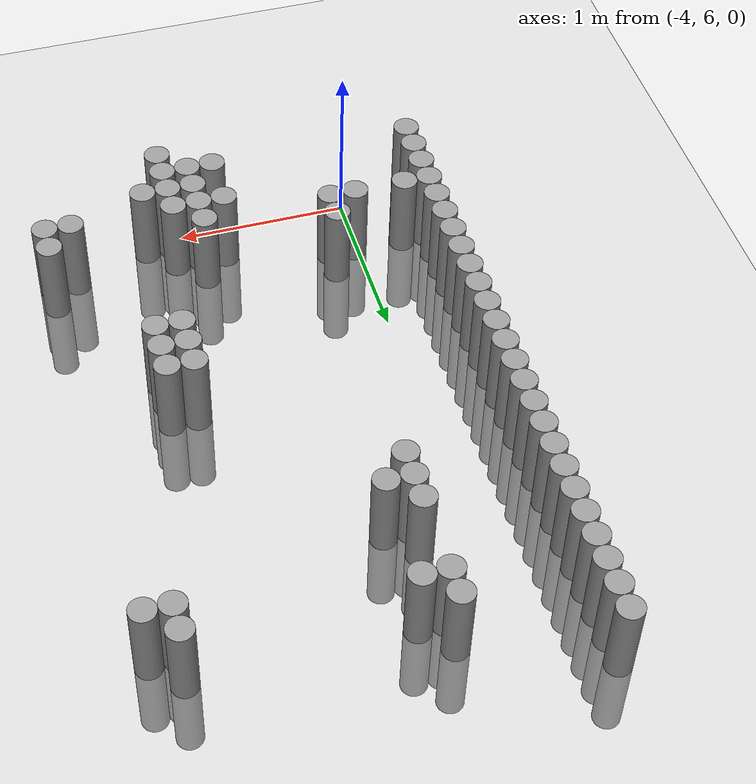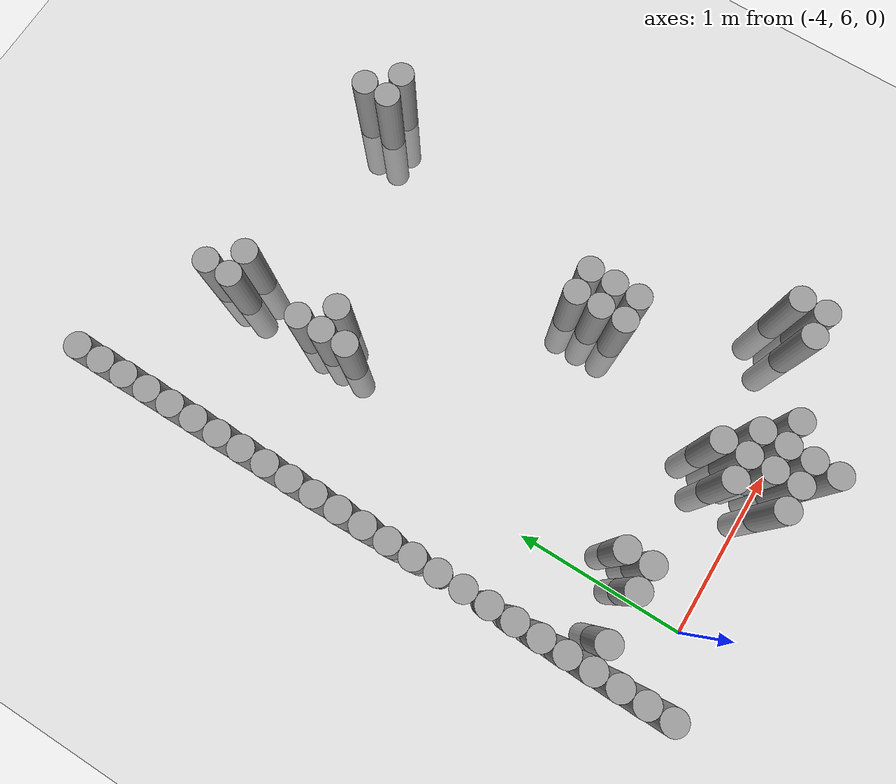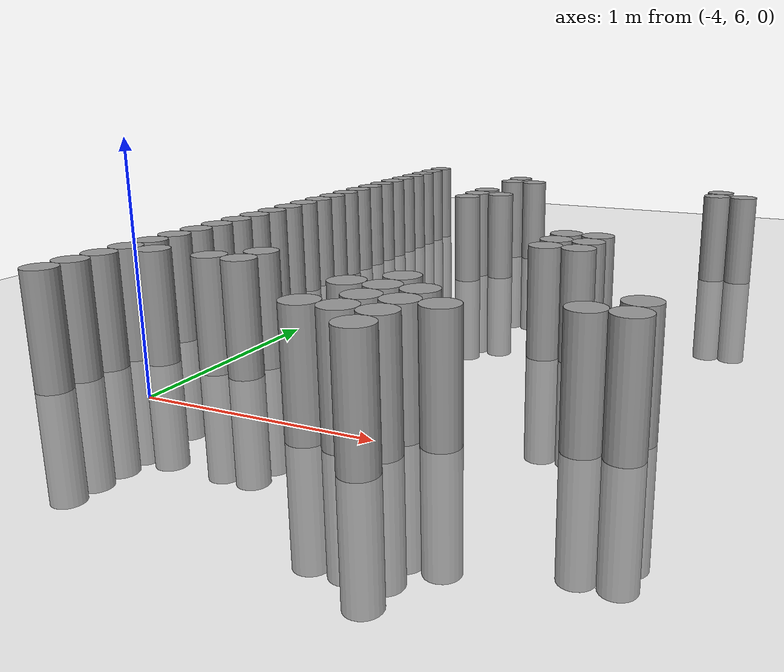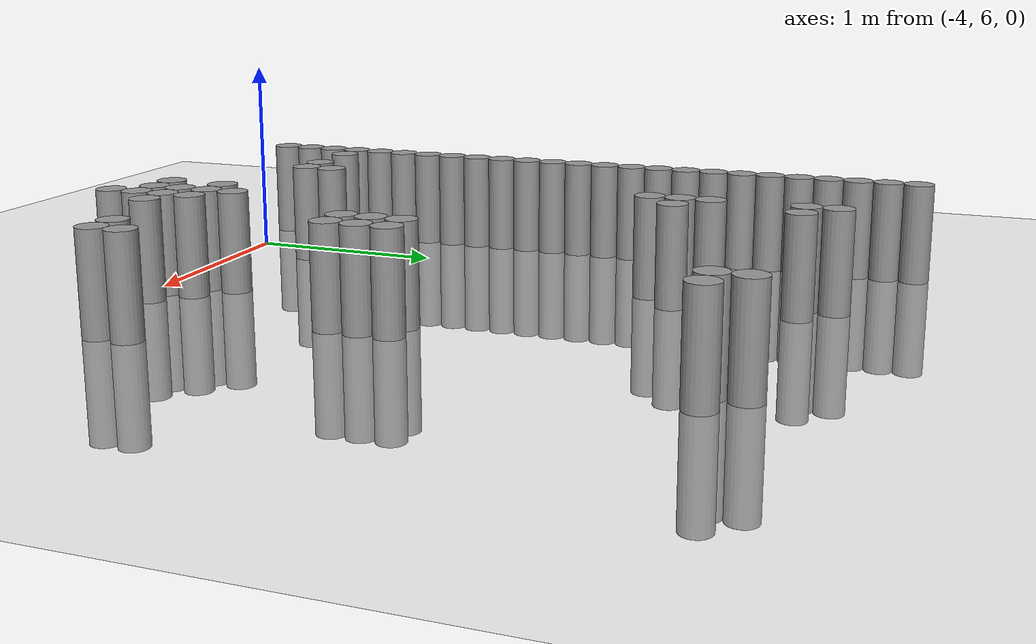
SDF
<sdf version="1.6">
 <world name="default">
  <model name="ground_plane">
   <static>1</static>
   <link name="link">
    <collision name="collision">
     <geometry><plane><normal>0 0 1</normal><size>100 100</size></plane></geometry>
     <surface><friction><ode><mu>1000</mu><mu2>500</mu2></ode></friction></surface>
    </collision>
    <visual name="visual">
     <cast_shadows>0</cast_shadows>
     <geometry><plane><normal>0 0 1</normal><size>100 100</size></plane></geometry>
     <material>
      <script><uri>file://media/materials/scripts/gazebo.material</uri><name>Gazebo/Grey</name></script>
     </material>
    </visual>
   </link>
  </model>
  <model name="unit_cylinder_101">
   <pose>-4.425000 5.925000 0.000000 0.000000 0.000000 0.000000</pose>
   <link name="link">
    <inertial>
     <mass>1</mass>
     <inertia><ixx>0.145833</ixx><ixy>0</ixy><ixz>0</ixz><iyy>0.145833</iyy><iyz>0</iyz><izz>0.125</izz></inertia>
    </inertial>
    <collision name="collision">
     <geometry><cylinder><radius>0.075000</radius><length>1</length></cylinder></geometry>
    </collision>
    <visual name="visual">
     <geometry><cylinder><radius>0.075000</radius><length>1</length></cylinder></geometry>
     <material>
      <script><name>Gazebo/Grey</name><uri>file://media/materials/scripts/gazebo.material</uri></script>
     </material>
    </visual>
   </link>
  </model>
  <model name="unit_cylinder_102">
   <pose>-4.425000 6.075000 0.000000 0.000000 0.000000 0.000000</pose>
   <link name="link">
    <inertial>
     <mass>1</mass>
     <inertia><ixx>0.145833</ixx><ixy>0</ixy><ixz>0</ixz><iyy>0.145833</iyy><iyz>0</iyz><izz>0.125</izz></inertia>
    </inertial>
    <collision name="collision">
     <geometry><cylinder><radius>0.075000</radius><length>1</length></cylinder></geometry>
    </collision>
    <visual name="visual">
     <geometry><cylinder><radius>0.075000</radius><length>1</length></cylinder></geometry>
     <material>
      <script><name>Gazebo/Grey</name><uri>file://media/materials/scripts/gazebo.material</uri></script>
     </material>
    </visual>
   </link>
  </model>
  <model name="unit_cylinder_103">
   <pose>-4.425000 6.225000 0.000000 0.000000 0.000000 0.000000</pose>
   <link name="link">
    <inertial>
     <mass>1</mass>
     <inertia><ixx>0.145833</ixx><ixy>0</ixy><ixz>0</ixz><iyy>0.145833</iyy><iyz>0</iyz><izz>0.125</izz></inertia>
    </inertial>
    <collision name="collision">
     <geometry><cylinder><radius>0.075000</radius><length>1</length></cylinder></geometry>
    </collision>
    <visual name="visual">
     <geometry><cylinder><radius>0.075000</radius><length>1</length></cylinder></geometry>
     <material>
      <script><name>Gazebo/Grey</name><uri>file://media/materials/scripts/gazebo.material</uri></script>
     </material>
    </visual>
   </link>
  </model>
  <model name="unit_cylinder_104">
   <pose>-4.425000 6.375000 0.000000 0.000000 0.000000 0.000000</pose>
   <link name="link">
    <inertial>
     <mass>1</mass>
     <inertia><ixx>0.145833</ixx><ixy>0</ixy><ixz>0</ixz><iyy>0.145833</iyy><iyz>0</iyz><izz>0.125</izz></inertia>
    </inertial>
    <collision name="collision">
     <geometry><cylinder><radius>0.075000</radius><length>1</length></cylinder></geometry>
    </collision>
    <visual name="visual">
     <geometry><cylinder><radius>0.075000</radius><length>1</length></cylinder></geometry>
     <material>
      <script><name>Gazebo/Grey</name><uri>file://media/materials/scripts/gazebo.material</uri></script>
     </material>
    </visual>
   </link>
  </model>
  <model name="unit_cylinder_105">
   <pose>-4.425000 6.525000 0.000000 0.000000 0.000000 0.000000</pose>
   <link name="link">
    <inertial>
     <mass>1</mass>
     <inertia><ixx>0.145833</ixx><ixy>0</ixy><ixz>0</ixz><iyy>0.145833</iyy><iyz>0</iyz><izz>0.125</izz></inertia>
    </inertial>
    <collision name="collision">
     <geometry><cylinder><radius>0.075000</radius><length>1</length></cylinder></geometry>
    </collision>
    <visual name="visual">
     <geometry><cylinder><radius>0.075000</radius><length>1</length></cylinder></geometry>
     <material>
      <script><name>Gazebo/Grey</name><uri>file://media/materials/scripts/gazebo.material</uri></script>
     </material>
    </visual>
   </link>
  </model>
  <model name="unit_cylinder_106">
   <pose>-4.425000 6.675000 0.000000 0.000000 0.000000 0.000000</pose>
   <link name="link">
    <inertial>
     <mass>1</mass>
     <inertia><ixx>0.145833</ixx><ixy>0</ixy><ixz>0</ixz><iyy>0.145833</iyy><iyz>0</iyz><izz>0.125</izz></inertia>
    </inertial>
    <collision name="collision">
     <geometry><cylinder><radius>0.075000</radius><length>1</length></cylinder></geometry>
    </collision>
    <visual name="visual">
     <geometry><cylinder><radius>0.075000</radius><length>1</length></cylinder></geometry>
     <material>
      <script><name>Gazebo/Grey</name><uri>file://media/materials/scripts/gazebo.material</uri></script>
     </material>
    </visual>
   </link>
  </model>
  <model name="unit_cylinder_107">
   <pose>-4.425000 6.825000 0.000000 0.000000 0.000000 0.000000</pose>
   <link name="link">
    <inertial>
     <mass>1</mass>
     <inertia><ixx>0.145833</ixx><ixy>0</ixy><ixz>0</ixz><iyy>0.145833</iyy><iyz>0</iyz><izz>0.125</izz></inertia>
    </inertial>
    <collision name="collision">
     <geometry><cylinder><radius>0.075000</radius><length>1</length></cylinder></geometry>
    </collision>
    <visual name="visual">
     <geometry><cylinder><radius>0.075000</radius><length>1</length></cylinder></geometry>
     <material>
      <script><name>Gazebo/Grey</name><uri>file://media/materials/scripts/gazebo.material</uri></script>
     </material>
    </visual>
   </link>
  </model>
  <model name="unit_cylinder_108">
   <pose>-4.425000 6.975000 0.000000 0.000000 0.000000 0.000000</pose>
   <link name="link">
    <inertial>
     <mass>1</mass>
     <inertia><ixx>0.145833</ixx><ixy>0</ixy><ixz>0</ixz><iyy>0.145833</iyy><iyz>0</iyz><izz>0.125</izz></inertia>
    </inertial>
    <collision name="collision">
     <geometry><cylinder><radius>0.075000</radius><length>1</length></cylinder></geometry>
    </collision>
    <visual name="visual">
     <geometry><cylinder><radius>0.075000</radius><length>1</length></cylinder></geometry>
     <material>
      <script><name>Gazebo/Grey</name><uri>file://media/materials/scripts/gazebo.material</uri></script>
     </material>
    </visual>
   </link>
  </model>
  <model name="unit_cylinder_109">
   <pose>-4.425000 7.125000 0.000000 0.000000 0.000000 0.000000</pose>
   <link name="link">
    <inertial>
     <mass>1</mass>
     <inertia><ixx>0.145833</ixx><ixy>0</ixy><ixz>0</ixz><iyy>0.145833</iyy><iyz>0</iyz><izz>0.125</izz></inertia>
    </inertial>
    <collision name="collision">
     <geometry><cylinder><radius>0.075000</radius><length>1</length></cylinder></geometry>
    </collision>
    <visual name="visual">
     <geometry><cylinder><radius>0.075000</radius><length>1</length></cylinder></geometry>
     <material>
      <script><name>Gazebo/Grey</name><uri>file://media/materials/scripts/gazebo.material</uri></script>
     </material>
    </visual>
   </link>
  </model>
  <model name="unit_cylinder_110">
   <pose>-4.425000 7.275000 0.000000 0.000000 0.000000 0.000000</pose>
   <link name="link">
    <inertial>
     <mass>1</mass>
     <inertia><ixx>0.145833</ixx><ixy>0</ixy><ixz>0</ixz><iyy>0.145833</iyy><iyz>0</iyz><izz>0.125</izz></inertia>
    </inertial>
    <collision name="collision">
     <geometry><cylinder><radius>0.075000</radius><length>1</length></cylinder></geometry>
    </collision>
    <visual name="visual">
     <geometry><cylinder><radius>0.075000</radius><length>1</length></cylinder></geometry>
     <material>
      <script><name>Gazebo/Grey</name><uri>file://media/materials/scripts/gazebo.material</uri></script>
     </material>
    </visual>
   </link>
  </model>
  <model name="unit_cylinder_111">
   <pose>-4.425000 7.425000 0.000000 0.000000 0.000000 0.000000</pose>
   <link name="link">
    <inertial>
     <mass>1</mass>
     <inertia><ixx>0.145833</ixx><ixy>0</ixy><ixz>0</ixz><iyy>0.145833</iyy><iyz>0</iyz><izz>0.125</izz></inertia>
    </inertial>
    <collision name="collision">
     <geometry><cylinder><radius>0.075000</radius><length>1</length></cylinder></geometry>
    </collision>
    <visual name="visual">
     <geometry><cylinder><radius>0.075000</radius><length>1</length></cylinder></geometry>
     <material>
      <script><name>Gazebo/Grey</name><uri>file://media/materials/scripts/gazebo.material</uri></script>
     </material>
    </visual>
   </link>
  </model>
  <model name="unit_cylinder_112">
   <pose>-4.425000 7.575000 0.000000 0.000000 0.000000 0.000000</pose>
   <link name="link">
    <inertial>
     <mass>1</mass>
     <inertia><ixx>0.145833</ixx><ixy>0</ixy><ixz>0</ixz><iyy>0.145833</iyy><iyz>0</iyz><izz>0.125</izz></inertia>
    </inertial>
    <collision name="collision">
     <geometry><cylinder><radius>0.075000</radius><length>1</length></cylinder></geometry>
    </collision>
    <visual name="visual">
     <geometry><cylinder><radius>0.075000</radius><length>1</length></cylinder></geometry>
     <material>
      <script><name>Gazebo/Grey</name><uri>file://media/materials/scripts/gazebo.material</uri></script>
     </material>
    </visual>
   </link>
  </model>
  <model name="unit_cylinder_113">
   <pose>-4.425000 7.725000 0.000000 0.000000 0.000000 0.000000</pose>
   <link name="link">
    <inertial>
     <mass>1</mass>
     <inertia><ixx>0.145833</ixx><ixy>0</ixy><ixz>0</ixz><iyy>0.145833</iyy><iyz>0</iyz><izz>0.125</izz></inertia>
    </inertial>
    <collision name="collision">
     <geometry><cylinder><radius>0.075000</radius><length>1</length></cylinder></geometry>
    </collision>
    <visual name="visual">
     <geometry><cylinder><radius>0.075000</radius><length>1</length></cylinder></geometry>
     <material>
      <script><name>Gazebo/Grey</name><uri>file://media/materials/scripts/gazebo.material</uri></script>
     </material>
    </visual>
   </link>
  </model>
  <model name="unit_cylinder_114">
   <pose>-4.425000 7.875000 0.000000 0.000000 0.000000 0.000000</pose>
   <link name="link">
    <inertial>
     <mass>1</mass>
     <inertia><ixx>0.145833</ixx><ixy>0</ixy><ixz>0</ixz><iyy>0.145833</iyy><iyz>0</iyz><izz>0.125</izz></inertia>
    </inertial>
    <collision name="collision">
     <geometry><cylinder><radius>0.075000</radius><length>1</length></cylinder></geometry>
    </collision>
    <visual name="visual">
     <geometry><cylinder><radius>0.075000</radius><length>1</length></cylinder></geometry>
     <material>
      <script><name>Gazebo/Grey</name><uri>file://media/materials/scripts/gazebo.material</uri></script>
     </material>
    </visual>
   </link>
  </model>
  <model name="unit_cylinder_115">
   <pose>-4.425000 8.025000 0.000000 0.000000 0.000000 0.000000</pose>
   <link name="link">
    <inertial>
     <mass>1</mass>
     <inertia><ixx>0.145833</ixx><ixy>0</ixy><ixz>0</ixz><iyy>0.145833</iyy><iyz>0</iyz><izz>0.125</izz></inertia>
    </inertial>
    <collision name="collision">
     <geometry><cylinder><radius>0.075000</radius><length>1</length></cylinder></geometry>
    </collision>
    <visual name="visual">
     <geometry><cylinder><radius>0.075000</radius><length>1</length></cylinder></geometry>
     <material>
      <script><name>Gazebo/Grey</name><uri>file://media/materials/scripts/gazebo.material</uri></script>
     </material>
    </visual>
   </link>
  </model>
  <model name="unit_cylinder_116">
   <pose>-4.425000 8.175000 0.000000 0.000000 0.000000 0.000000</pose>
   <link name="link">
    <inertial>
     <mass>1</mass>
     <inertia><ixx>0.145833</ixx><ixy>0</ixy><ixz>0</ixz><iyy>0.145833</iyy><iyz>0</iyz><izz>0.125</izz></inertia>
    </inertial>
    <collision name="collision">
     <geometry><cylinder><radius>0.075000</radius><length>1</length></cylinder></geometry>
    </collision>
    <visual name="visual">
     <geometry><cylinder><radius>0.075000</radius><length>1</length></cylinder></geometry>
     <material>
      <script><name>Gazebo/Grey</name><uri>file://media/materials/scripts/gazebo.material</uri></script>
     </material>
    </visual>
   </link>
  </model>
  <model name="unit_cylinder_117">
   <pose>-4.425000 8.325000 0.000000 0.000000 0.000000 0.000000</pose>
   <link name="link">
    <inertial>
     <mass>1</mass>
     <inertia><ixx>0.145833</ixx><ixy>0</ixy><ixz>0</ixz><iyy>0.145833</iyy><iyz>0</iyz><izz>0.125</izz></inertia>
    </inertial>
    <collision name="collision">
     <geometry><cylinder><radius>0.075000</radius><length>1</length></cylinder></geometry>
    </collision>
    <visual name="visual">
     <geometry><cylinder><radius>0.075000</radius><length>1</length></cylinder></geometry>
     <material>
      <script><name>Gazebo/Grey</name><uri>file://media/materials/scripts/gazebo.material</uri></script>
     </material>
    </visual>
   </link>
  </model>
  <model name="unit_cylinder_118">
   <pose>-4.425000 8.475000 0.000000 0.000000 0.000000 0.000000</pose>
   <link name="link">
    <inertial>
     <mass>1</mass>
     <inertia><ixx>0.145833</ixx><ixy>0</ixy><ixz>0</ixz><iyy>0.145833</iyy><iyz>0</iyz><izz>0.125</izz></inertia>
    </inertial>
    <collision name="collision">
     <geometry><cylinder><radius>0.075000</radius><length>1</length></cylinder></geometry>
    </collision>
    <visual name="visual">
     <geometry><cylinder><radius>0.075000</radius><length>1</length></cylinder></geometry>
     <material>
      <script><name>Gazebo/Grey</name><uri>file://media/materials/scripts/gazebo.material</uri></script>
     </material>
    </visual>
   </link>
  </model>
  <model name="unit_cylinder_119">
   <pose>-4.425000 8.625000 0.000000 0.000000 0.000000 0.000000</pose>
   <link name="link">
    <inertial>
     <mass>1</mass>
     <inertia><ixx>0.145833</ixx><ixy>0</ixy><ixz>0</ixz><iyy>0.145833</iyy><iyz>0</iyz><izz>0.125</izz></inertia>
    </inertial>
    <collision name="collision">
     <geometry><cylinder><radius>0.075000</radius><length>1</length></cylinder></geometry>
    </collision>
    <visual name="visual">
     <geometry><cylinder><radius>0.075000</radius><length>1</length></cylinder></geometry>
     <material>
      <script><name>Gazebo/Grey</name><uri>file://media/materials/scripts/gazebo.material</uri></script>
     </material>
    </visual>
   </link>
  </model>
  <model name="unit_cylinder_120">
   <pose>-4.425000 8.775000 0.000000 0.000000 0.000000 0.000000</pose>
   <link name="link">
    <inertial>
     <mass>1</mass>
     <inertia><ixx>0.145833</ixx><ixy>0</ixy><ixz>0</ixz><iyy>0.145833</iyy><iyz>0</iyz><izz>0.125</izz></inertia>
    </inertial>
    <collision name="collision">
     <geometry><cylinder><radius>0.075000</radius><length>1</length></cylinder></geometry>
    </collision>
    <visual name="visual">
     <geometry><cylinder><radius>0.075000</radius><length>1</length></cylinder></geometry>
     <material>
      <script><name>Gazebo/Grey</name><uri>file://media/materials/scripts/gazebo.material</uri></script>
     </material>
    </visual>
   </link>
  </model>
  <model name="unit_cylinder_121">
   <pose>-4.425000 8.925000 0.000000 0.000000 0.000000 0.000000</pose>
   <link name="link">
    <inertial>
     <mass>1</mass>
     <inertia><ixx>0.145833</ixx><ixy>0</ixy><ixz>0</ixz><iyy>0.145833</iyy><iyz>0</iyz><izz>0.125</izz></inertia>
    </inertial>
    <collision name="collision">
     <geometry><cylinder><radius>0.075000</radius><length>1</length></cylinder></geometry>
    </collision>
    <visual name="visual">
     <geometry><cylinder><radius>0.075000</radius><length>1</length></cylinder></geometry>
     <material>
      <script><name>Gazebo/Grey</name><uri>file://media/materials/scripts/gazebo.material</uri></script>
     </material>
    </visual>
   </link>
  </model>
  <model name="unit_cylinder_122">
   <pose>-4.425000 9.075000 0.000000 0.000000 0.000000 0.000000</pose>
   <link name="link">
    <inertial>
     <mass>1</mass>
     <inertia><ixx>0.145833</ixx><ixy>0</ixy><ixz>0</ixz><iyy>0.145833</iyy><iyz>0</iyz><izz>0.125</izz></inertia>
    </inertial>
    <collision name="collision">
     <geometry><cylinder><radius>0.075000</radius><length>1</length></cylinder></geometry>
    </collision>
    <visual name="visual">
     <geometry><cylinder><radius>0.075000</radius><length>1</length></cylinder></geometry>
     <material>
      <script><name>Gazebo/Grey</name><uri>file://media/materials/scripts/gazebo.material</uri></script>
     </material>
    </visual>
   </link>
  </model>
  <model name="unit_cylinder_123">
   <pose>-4.425000 9.225000 0.000000 0.000000 0.000000 0.000000</pose>
   <link name="link">
    <inertial>
     <mass>1</mass>
     <inertia><ixx>0.145833</ixx><ixy>0</ixy><ixz>0</ixz><iyy>0.145833</iyy><iyz>0</iyz><izz>0.125</izz></inertia>
    </inertial>
    <collision name="collision">
     <geometry><cylinder><radius>0.075000</radius><length>1</length></cylinder></geometry>
    </collision>
    <visual name="visual">
     <geometry><cylinder><radius>0.075000</radius><length>1</length></cylinder></geometry>
     <material>
      <script><name>Gazebo/Grey</name><uri>file://media/materials/scripts/gazebo.material</uri></script>
     </material>
    </visual>
   </link>
  </model>
  <model name="unit_cylinder_124">
   <pose>-4.425000 9.375000 0.000000 0.000000 0.000000 0.000000</pose>
   <link name="link">
    <inertial>
     <mass>1</mass>
     <inertia><ixx>0.145833</ixx><ixy>0</ixy><ixz>0</ixz><iyy>0.145833</iyy><iyz>0</iyz><izz>0.125</izz></inertia>
    </inertial>
    <collision name="collision">
     <geometry><cylinder><radius>0.075000</radius><length>1</length></cylinder></geometry>
    </collision>
    <visual name="visual">
     <geometry><cylinder><radius>0.075000</radius><length>1</length></cylinder></geometry>
     <material>
      <script><name>Gazebo/Grey</name><uri>file://media/materials/scripts/gazebo.material</uri></script>
     </material>
    </visual>
   </link>
  </model>
  <model name="unit_cylinder_125">
   <pose>-4.425000 9.525000 0.000000 0.000000 0.000000 0.000000</pose>
   <link name="link">
    <inertial>
     <mass>1</mass>
     <inertia><ixx>0.145833</ixx><ixy>0</ixy><ixz>0</ixz><iyy>0.145833</iyy><iyz>0</iyz><izz>0.125</izz></inertia>
    </inertial>
    <collision name="collision">
     <geometry><cylinder><radius>0.075000</radius><length>1</length></cylinder></geometry>
    </collision>
    <visual name="visual">
     <geometry><cylinder><radius>0.075000</radius><length>1</length></cylinder></geometry>
     <material>
      <script><name>Gazebo/Grey</name><uri>file://media/materials/scripts/gazebo.material</uri></script>
     </material>
    </visual>
   </link>
  </model>
  <model name="unit_cylinder_129">
   <pose>-4.275000 6.375000 0.000000 0.000000 0.000000 0.000000</pose>
   <link name="link">
    <inertial>
     <mass>1</mass>
     <inertia><ixx>0.145833</ixx><ixy>0</ixy><ixz>0</ixz><iyy>0.145833</iyy><iyz>0</iyz><izz>0.125</izz></inertia>
    </inertial>
    <collision name="collision">
     <geometry><cylinder><radius>0.075000</radius><length>1</length></cylinder></geometry>
    </collision>
    <visual name="visual">
     <geometry><cylinder><radius>0.075000</radius><length>1</length></cylinder></geometry>
     <material>
      <script><name>Gazebo/Grey</name><uri>file://media/materials/scripts/gazebo.material</uri></script>
     </material>
    </visual>
   </link>
  </model>
  <model name="unit_cylinder_131">
   <pose>-3.975000 6.375000 0.000000 0.000000 0.000000 0.000000</pose>
   <link name="link">
    <inertial>
     <mass>1</mass>
     <inertia><ixx>0.145833</ixx><ixy>0</ixy><ixz>0</ixz><iyy>0.145833</iyy><iyz>0</iyz><izz>0.125</izz></inertia>
    </inertial>
    <collision name="collision">
     <geometry><cylinder><radius>0.075000</radius><length>1</length></cylinder></geometry>
    </collision>
    <visual name="visual">
     <geometry><cylinder><radius>0.075000</radius><length>1</length></cylinder></geometry>
     <material>
      <script><name>Gazebo/Grey</name><uri>file://media/materials/scripts/gazebo.material</uri></script>
     </material>
    </visual>
   </link>
  </model>
  <model name="unit_cylinder_132">
   <pose>-3.825000 6.375000 0.000000 0.000000 0.000000 0.000000</pose>
   <link name="link">
    <inertial>
     <mass>1</mass>
     <inertia><ixx>0.145833</ixx><ixy>0</ixy><ixz>0</ixz><iyy>0.145833</iyy><iyz>0</iyz><izz>0.125</izz></inertia>
    </inertial>
    <collision name="collision">
     <geometry><cylinder><radius>0.075000</radius><length>1</length></cylinder></geometry>
    </collision>
    <visual name="visual">
     <geometry><cylinder><radius>0.075000</radius><length>1</length></cylinder></geometry>
     <material>
      <script><name>Gazebo/Grey</name><uri>file://media/materials/scripts/gazebo.material</uri></script>
     </material>
    </visual>
   </link>
  </model>
  <model name="unit_cylinder_133">
   <pose>-3.825000 6.525000 0.000000 0.000000 0.000000 0.000000</pose>
   <link name="link">
    <inertial>
     <mass>1</mass>
     <inertia><ixx>0.145833</ixx><ixy>0</ixy><ixz>0</ixz><iyy>0.145833</iyy><iyz>0</iyz><izz>0.125</izz></inertia>
    </inertial>
    <collision name="collision">
     <geometry><cylinder><radius>0.075000</radius><length>1</length></cylinder></geometry>
    </collision>
    <visual name="visual">
     <geometry><cylinder><radius>0.075000</radius><length>1</length></cylinder></geometry>
     <material>
      <script><name>Gazebo/Grey</name><uri>file://media/materials/scripts/gazebo.material</uri></script>
     </material>
    </visual>
   </link>
  </model>
  <model name="unit_cylinder_134">
   <pose>-3.675000 8.325000 0.000000 0.000000 0.000000 0.000000</pose>
   <link name="link">
    <inertial>
     <mass>1</mass>
     <inertia><ixx>0.145833</ixx><ixy>0</ixy><ixz>0</ixz><iyy>0.145833</iyy><iyz>0</iyz><izz>0.125</izz></inertia>
    </inertial>
    <collision name="collision">
     <geometry><cylinder><radius>0.075000</radius><length>1</length></cylinder></geometry>
    </collision>
    <visual name="visual">
     <geometry><cylinder><radius>0.075000</radius><length>1</length></cylinder></geometry>
     <material>
      <script><name>Gazebo/Grey</name><uri>file://media/materials/scripts/gazebo.material</uri></script>
     </material>
    </visual>
   </link>
  </model>
  <model name="unit_cylinder_135">
   <pose>-3.675000 8.475000 0.000000 0.000000 0.000000 0.000000</pose>
   <link name="link">
    <inertial>
     <mass>1</mass>
     <inertia><ixx>0.145833</ixx><ixy>0</ixy><ixz>0</ixz><iyy>0.145833</iyy><iyz>0</iyz><izz>0.125</izz></inertia>
    </inertial>
    <collision name="collision">
     <geometry><cylinder><radius>0.075000</radius><length>1</length></cylinder></geometry>
    </collision>
    <visual name="visual">
     <geometry><cylinder><radius>0.075000</radius><length>1</length></cylinder></geometry>
     <material>
      <script><name>Gazebo/Grey</name><uri>file://media/materials/scripts/gazebo.material</uri></script>
     </material>
    </visual>
   </link>
  </model>
  <model name="unit_cylinder_136">
   <pose>-3.675000 8.625000 0.000000 0.000000 0.000000 0.000000</pose>
   <link name="link">
    <inertial>
     <mass>1</mass>
     <inertia><ixx>0.145833</ixx><ixy>0</ixy><ixz>0</ixz><iyy>0.145833</iyy><iyz>0</iyz><izz>0.125</izz></inertia>
    </inertial>
    <collision name="collision">
     <geometry><cylinder><radius>0.075000</radius><length>1</length></cylinder></geometry>
    </collision>
    <visual name="visual">
     <geometry><cylinder><radius>0.075000</radius><length>1</length></cylinder></geometry>
     <material>
      <script><name>Gazebo/Grey</name><uri>file://media/materials/scripts/gazebo.material</uri></script>
     </material>
    </visual>
   </link>
  </model>
  <model name="unit_cylinder_137">
   <pose>-3.675000 9.075000 0.000000 0.000000 0.000000 0.000000</pose>
   <link name="link">
    <inertial>
     <mass>1</mass>
     <inertia><ixx>0.145833</ixx><ixy>0</ixy><ixz>0</ixz><iyy>0.145833</iyy><iyz>0</iyz><izz>0.125</izz></inertia>
    </inertial>
    <collision name="collision">
     <geometry><cylinder><radius>0.075000</radius><length>1</length></cylinder></geometry>
    </collision>
    <visual name="visual">
     <geometry><cylinder><radius>0.075000</radius><length>1</length></cylinder></geometry>
     <material>
      <script><name>Gazebo/Grey</name><uri>file://media/materials/scripts/gazebo.material</uri></script>
     </material>
    </visual>
   </link>
  </model>
  <model name="unit_cylinder_138">
   <pose>-3.675000 9.225000 0.000000 0.000000 0.000000 0.000000</pose>
   <link name="link">
    <inertial>
     <mass>1</mass>
     <inertia><ixx>0.145833</ixx><ixy>0</ixy><ixz>0</ixz><iyy>0.145833</iyy><iyz>0</iyz><izz>0.125</izz></inertia>
    </inertial>
    <collision name="collision">
     <geometry><cylinder><radius>0.075000</radius><length>1</length></cylinder></geometry>
    </collision>
    <visual name="visual">
     <geometry><cylinder><radius>0.075000</radius><length>1</length></cylinder></geometry>
     <material>
      <script><name>Gazebo/Grey</name><uri>file://media/materials/scripts/gazebo.material</uri></script>
     </material>
    </visual>
   </link>
  </model>
  <model name="unit_cylinder_141">
   <pose>-3.525000 8.475000 0.000000 0.000000 0.000000 0.000000</pose>
   <link name="link">
    <inertial>
     <mass>1</mass>
     <inertia><ixx>0.145833</ixx><ixy>0</ixy><ixz>0</ixz><iyy>0.145833</iyy><iyz>0</iyz><izz>0.125</izz></inertia>
    </inertial>
    <collision name="collision">
     <geometry><cylinder><radius>0.075000</radius><length>1</length></cylinder></geometry>
    </collision>
    <visual name="visual">
     <geometry><cylinder><radius>0.075000</radius><length>1</length></cylinder></geometry>
     <material>
      <script><name>Gazebo/Grey</name><uri>file://media/materials/scripts/gazebo.material</uri></script>
     </material>
    </visual>
   </link>
  </model>
  <model name="unit_cylinder_142">
   <pose>-3.525000 9.075000 0.000000 0.000000 0.000000 0.000000</pose>
   <link name="link">
    <inertial>
     <mass>1</mass>
     <inertia><ixx>0.145833</ixx><ixy>0</ixy><ixz>0</ixz><iyy>0.145833</iyy><iyz>0</iyz><izz>0.125</izz></inertia>
    </inertial>
    <collision name="collision">
     <geometry><cylinder><radius>0.075000</radius><length>1</length></cylinder></geometry>
    </collision>
    <visual name="visual">
     <geometry><cylinder><radius>0.075000</radius><length>1</length></cylinder></geometry>
     <material>
      <script><name>Gazebo/Grey</name><uri>file://media/materials/scripts/gazebo.material</uri></script>
     </material>
    </visual>
   </link>
  </model>
  <model name="unit_cylinder_148">
   <pose>-3.225000 5.925000 0.000000 0.000000 0.000000 0.000000</pose>
   <link name="link">
    <inertial>
     <mass>1</mass>
     <inertia><ixx>0.145833</ixx><ixy>0</ixy><ixz>0</ixz><iyy>0.145833</iyy><iyz>0</iyz><izz>0.125</izz></inertia>
    </inertial>
    <collision name="collision">
     <geometry><cylinder><radius>0.075000</radius><length>1</length></cylinder></geometry>
    </collision>
    <visual name="visual">
     <geometry><cylinder><radius>0.075000</radius><length>1</length></cylinder></geometry>
     <material>
      <script><name>Gazebo/Grey</name><uri>file://media/materials/scripts/gazebo.material</uri></script>
     </material>
    </visual>
   </link>
  </model>
  <model name="unit_cylinder_149">
   <pose>-3.225000 6.225000 0.000000 0.000000 0.000000 0.000000</pose>
   <link name="link">
    <inertial>
     <mass>1</mass>
     <inertia><ixx>0.145833</ixx><ixy>0</ixy><ixz>0</ixz><iyy>0.145833</iyy><iyz>0</iyz><izz>0.125</izz></inertia>
    </inertial>
    <collision name="collision">
     <geometry><cylinder><radius>0.075000</radius><length>1</length></cylinder></geometry>
    </collision>
    <visual name="visual">
     <geometry><cylinder><radius>0.075000</radius><length>1</length></cylinder></geometry>
     <material>
      <script><name>Gazebo/Grey</name><uri>file://media/materials/scripts/gazebo.material</uri></script>
     </material>
    </visual>
   </link>
  </model>
  <model name="unit_cylinder_152">
   <pose>-3.075000 5.925000 0.000000 0.000000 0.000000 0.000000</pose>
   <link name="link">
    <inertial>
     <mass>1</mass>
     <inertia><ixx>0.145833</ixx><ixy>0</ixy><ixz>0</ixz><iyy>0.145833</iyy><iyz>0</iyz><izz>0.125</izz></inertia>
    </inertial>
    <collision name="collision">
     <geometry><cylinder><radius>0.075000</radius><length>1</length></cylinder></geometry>
    </collision>
    <visual name="visual">
     <geometry><cylinder><radius>0.075000</radius><length>1</length></cylinder></geometry>
     <material>
      <script><name>Gazebo/Grey</name><uri>file://media/materials/scripts/gazebo.material</uri></script>
     </material>
    </visual>
   </link>
  </model>
  <model name="unit_cylinder_153">
   <pose>-3.075000 6.075000 0.000000 0.000000 0.000000 0.000000</pose>
   <link name="link">
    <inertial>
     <mass>1</mass>
     <inertia><ixx>0.145833</ixx><ixy>0</ixy><ixz>0</ixz><iyy>0.145833</iyy><iyz>0</iyz><izz>0.125</izz></inertia>
    </inertial>
    <collision name="collision">
     <geometry><cylinder><radius>0.075000</radius><length>1</length></cylinder></geometry>
    </collision>
    <visual name="visual">
     <geometry><cylinder><radius>0.075000</radius><length>1</length></cylinder></geometry>
     <material>
      <script><name>Gazebo/Grey</name><uri>file://media/materials/scripts/gazebo.material</uri></script>
     </material>
    </visual>
   </link>
  </model>
  <model name="unit_cylinder_154">
   <pose>-3.075000 6.225000 0.000000 0.000000 0.000000 0.000000</pose>
   <link name="link">
    <inertial>
     <mass>1</mass>
     <inertia><ixx>0.145833</ixx><ixy>0</ixy><ixz>0</ixz><iyy>0.145833</iyy><iyz>0</iyz><izz>0.125</izz></inertia>
    </inertial>
    <collision name="collision">
     <geometry><cylinder><radius>0.075000</radius><length>1</length></cylinder></geometry>
    </collision>
    <visual name="visual">
     <geometry><cylinder><radius>0.075000</radius><length>1</length></cylinder></geometry>
     <material>
      <script><name>Gazebo/Grey</name><uri>file://media/materials/scripts/gazebo.material</uri></script>
     </material>
    </visual>
   </link>
  </model>
  <model name="unit_cylinder_155">
   <pose>-3.075000 6.375000 0.000000 0.000000 0.000000 0.000000</pose>
   <link name="link">
    <inertial>
     <mass>1</mass>
     <inertia><ixx>0.145833</ixx><ixy>0</ixy><ixz>0</ixz><iyy>0.145833</iyy><iyz>0</iyz><izz>0.125</izz></inertia>
    </inertial>
    <collision name="collision">
     <geometry><cylinder><radius>0.075000</radius><length>1</length></cylinder></geometry>
    </collision>
    <visual name="visual">
     <geometry><cylinder><radius>0.075000</radius><length>1</length></cylinder></geometry>
     <material>
      <script><name>Gazebo/Grey</name><uri>file://media/materials/scripts/gazebo.material</uri></script>
     </material>
    </visual>
   </link>
  </model>
  <model name="unit_cylinder_156">
   <pose>-2.925000 5.775000 0.000000 0.000000 0.000000 0.000000</pose>
   <link name="link">
    <inertial>
     <mass>1</mass>
     <inertia><ixx>0.145833</ixx><ixy>0</ixy><ixz>0</ixz><iyy>0.145833</iyy><iyz>0</iyz><izz>0.125</izz></inertia>
    </inertial>
    <collision name="collision">
     <geometry><cylinder><radius>0.075000</radius><length>1</length></cylinder></geometry>
    </collision>
    <visual name="visual">
     <geometry><cylinder><radius>0.075000</radius><length>1</length></cylinder></geometry>
     <material>
      <script><name>Gazebo/Grey</name><uri>file://media/materials/scripts/gazebo.material</uri></script>
     </material>
    </visual>
   </link>
  </model>
  <model name="unit_cylinder_157">
   <pose>-2.925000 5.925000 0.000000 0.000000 0.000000 0.000000</pose>
   <link name="link">
    <inertial>
     <mass>1</mass>
     <inertia><ixx>0.145833</ixx><ixy>0</ixy><ixz>0</ixz><iyy>0.145833</iyy><iyz>0</iyz><izz>0.125</izz></inertia>
    </inertial>
    <collision name="collision">
     <geometry><cylinder><radius>0.075000</radius><length>1</length></cylinder></geometry>
    </collision>
    <visual name="visual">
     <geometry><cylinder><radius>0.075000</radius><length>1</length></cylinder></geometry>
     <material>
      <script><name>Gazebo/Grey</name><uri>file://media/materials/scripts/gazebo.material</uri></script>
     </material>
    </visual>
   </link>
  </model>
  <model name="unit_cylinder_158">
   <pose>-2.925000 6.075000 0.000000 0.000000 0.000000 0.000000</pose>
   <link name="link">
    <inertial>
     <mass>1</mass>
     <inertia><ixx>0.145833</ixx><ixy>0</ixy><ixz>0</ixz><iyy>0.145833</iyy><iyz>0</iyz><izz>0.125</izz></inertia>
    </inertial>
    <collision name="collision">
     <geometry><cylinder><radius>0.075000</radius><length>1</length></cylinder></geometry>
    </collision>
    <visual name="visual">
     <geometry><cylinder><radius>0.075000</radius><length>1</length></cylinder></geometry>
     <material>
      <script><name>Gazebo/Grey</name><uri>file://media/materials/scripts/gazebo.material</uri></script>
     </material>
    </visual>
   </link>
  </model>
  <model name="unit_cylinder_159">
   <pose>-2.925000 6.225000 0.000000 0.000000 0.000000 0.000000</pose>
   <link name="link">
    <inertial>
     <mass>1</mass>
     <inertia><ixx>0.145833</ixx><ixy>0</ixy><ixz>0</ixz><iyy>0.145833</iyy><iyz>0</iyz><izz>0.125</izz></inertia>
    </inertial>
    <collision name="collision">
     <geometry><cylinder><radius>0.075000</radius><length>1</length></cylinder></geometry>
    </collision>
    <visual name="visual">
     <geometry><cylinder><radius>0.075000</radius><length>1</length></cylinder></geometry>
     <material>
      <script><name>Gazebo/Grey</name><uri>file://media/materials/scripts/gazebo.material</uri></script>
     </material>
    </visual>
   </link>
  </model>
  <model name="unit_cylinder_160">
   <pose>-2.775000 6.075000 0.000000 0.000000 0.000000 0.000000</pose>
   <link name="link">
    <inertial>
     <mass>1</mass>
     <inertia><ixx>0.145833</ixx><ixy>0</ixy><ixz>0</ixz><iyy>0.145833</iyy><iyz>0</iyz><izz>0.125</izz></inertia>
    </inertial>
    <collision name="collision">
     <geometry><cylinder><radius>0.075000</radius><length>1</length></cylinder></geometry>
    </collision>
    <visual name="visual">
     <geometry><cylinder><radius>0.075000</radius><length>1</length></cylinder></geometry>
     <material>
      <script><name>Gazebo/Grey</name><uri>file://media/materials/scripts/gazebo.material</uri></script>
     </material>
    </visual>
   </link>
  </model>
  <model name="unit_cylinder_161">
   <pose>-2.775000 7.125000 0.000000 0.000000 0.000000 0.000000</pose>
   <link name="link">
    <inertial>
     <mass>1</mass>
     <inertia><ixx>0.145833</ixx><ixy>0</ixy><ixz>0</ixz><iyy>0.145833</iyy><iyz>0</iyz><izz>0.125</izz></inertia>
    </inertial>
    <collision name="collision">
     <geometry><cylinder><radius>0.075000</radius><length>1</length></cylinder></geometry>
    </collision>
    <visual name="visual">
     <geometry><cylinder><radius>0.075000</radius><length>1</length></cylinder></geometry>
     <material>
      <script><name>Gazebo/Grey</name><uri>file://media/materials/scripts/gazebo.material</uri></script>
     </material>
    </visual>
   </link>
  </model>
  <model name="unit_cylinder_162">
   <pose>-2.775000 7.275000 0.000000 0.000000 0.000000 0.000000</pose>
   <link name="link">
    <inertial>
     <mass>1</mass>
     <inertia><ixx>0.145833</ixx><ixy>0</ixy><ixz>0</ixz><iyy>0.145833</iyy><iyz>0</iyz><izz>0.125</izz></inertia>
    </inertial>
    <collision name="collision">
     <geometry><cylinder><radius>0.075000</radius><length>1</length></cylinder></geometry>
    </collision>
    <visual name="visual">
     <geometry><cylinder><radius>0.075000</radius><length>1</length></cylinder></geometry>
     <material>
      <script><name>Gazebo/Grey</name><uri>file://media/materials/scripts/gazebo.material</uri></script>
     </material>
    </visual>
   </link>
  </model>
  <model name="unit_cylinder_163">
   <pose>-2.775000 7.425000 0.000000 0.000000 0.000000 0.000000</pose>
   <link name="link">
    <inertial>
     <mass>1</mass>
     <inertia><ixx>0.145833</ixx><ixy>0</ixy><ixz>0</ixz><iyy>0.145833</iyy><iyz>0</iyz><izz>0.125</izz></inertia>
    </inertial>
    <collision name="collision">
     <geometry><cylinder><radius>0.075000</radius><length>1</length></cylinder></geometry>
    </collision>
    <visual name="visual">
     <geometry><cylinder><radius>0.075000</radius><length>1</length></cylinder></geometry>
     <material>
      <script><name>Gazebo/Grey</name><uri>file://media/materials/scripts/gazebo.material</uri></script>
     </material>
    </visual>
   </link>
  </model>
  <model name="unit_cylinder_164">
   <pose>-2.625000 7.125000 0.000000 0.000000 0.000000 0.000000</pose>
   <link name="link">
    <inertial>
     <mass>1</mass>
     <inertia><ixx>0.145833</ixx><ixy>0</ixy><ixz>0</ixz><iyy>0.145833</iyy><iyz>0</iyz><izz>0.125</izz></inertia>
    </inertial>
    <collision name="collision">
     <geometry><cylinder><radius>0.075000</radius><length>1</length></cylinder></geometry>
    </collision>
    <visual name="visual">
     <geometry><cylinder><radius>0.075000</radius><length>1</length></cylinder></geometry>
     <material>
      <script><name>Gazebo/Grey</name><uri>file://media/materials/scripts/gazebo.material</uri></script>
     </material>
    </visual>
   </link>
  </model>
  <model name="unit_cylinder_165">
   <pose>-2.625000 7.275000 0.000000 0.000000 0.000000 0.000000</pose>
   <link name="link">
    <inertial>
     <mass>1</mass>
     <inertia><ixx>0.145833</ixx><ixy>0</ixy><ixz>0</ixz><iyy>0.145833</iyy><iyz>0</iyz><izz>0.125</izz></inertia>
    </inertial>
    <collision name="collision">
     <geometry><cylinder><radius>0.075000</radius><length>1</length></cylinder></geometry>
    </collision>
    <visual name="visual">
     <geometry><cylinder><radius>0.075000</radius><length>1</length></cylinder></geometry>
     <material>
      <script><name>Gazebo/Grey</name><uri>file://media/materials/scripts/gazebo.material</uri></script>
     </material>
    </visual>
   </link>
  </model>
  <model name="unit_cylinder_166">
   <pose>-2.625000 7.425000 0.000000 0.000000 0.000000 0.000000</pose>
   <link name="link">
    <inertial>
     <mass>1</mass>
     <inertia><ixx>0.145833</ixx><ixy>0</ixy><ixz>0</ixz><iyy>0.145833</iyy><iyz>0</iyz><izz>0.125</izz></inertia>
    </inertial>
    <collision name="collision">
     <geometry><cylinder><radius>0.075000</radius><length>1</length></cylinder></geometry>
    </collision>
    <visual name="visual">
     <geometry><cylinder><radius>0.075000</radius><length>1</length></cylinder></geometry>
     <material>
      <script><name>Gazebo/Grey</name><uri>file://media/materials/scripts/gazebo.material</uri></script>
     </material>
    </visual>
   </link>
  </model>
  <model name="unit_cylinder_167">
   <pose>-2.325000 6.225000 0.000000 0.000000 0.000000 0.000000</pose>
   <link name="link">
    <inertial>
     <mass>1</mass>
     <inertia><ixx>0.145833</ixx><ixy>0</ixy><ixz>0</ixz><iyy>0.145833</iyy><iyz>0</iyz><izz>0.125</izz></inertia>
    </inertial>
    <collision name="collision">
     <geometry><cylinder><radius>0.075000</radius><length>1</length></cylinder></geometry>
    </collision>
    <visual name="visual">
     <geometry><cylinder><radius>0.075000</radius><length>1</length></cylinder></geometry>
     <material>
      <script><name>Gazebo/Grey</name><uri>file://media/materials/scripts/gazebo.material</uri></script>
     </material>
    </visual>
   </link>
  </model>
  <model name="unit_cylinder_168">
   <pose>-2.325000 8.925000 0.000000 0.000000 0.000000 0.000000</pose>
   <link name="link">
    <inertial>
     <mass>1</mass>
     <inertia><ixx>0.145833</ixx><ixy>0</ixy><ixz>0</ixz><iyy>0.145833</iyy><iyz>0</iyz><izz>0.125</izz></inertia>
    </inertial>
    <collision name="collision">
     <geometry><cylinder><radius>0.075000</radius><length>1</length></cylinder></geometry>
    </collision>
    <visual name="visual">
     <geometry><cylinder><radius>0.075000</radius><length>1</length></cylinder></geometry>
     <material>
      <script><name>Gazebo/Grey</name><uri>file://media/materials/scripts/gazebo.material</uri></script>
     </material>
    </visual>
   </link>
  </model>
  <model name="unit_cylinder_169">
   <pose>-2.325000 9.075000 0.000000 0.000000 0.000000 0.000000</pose>
   <link name="link">
    <inertial>
     <mass>1</mass>
     <inertia><ixx>0.145833</ixx><ixy>0</ixy><ixz>0</ixz><iyy>0.145833</iyy><iyz>0</iyz><izz>0.125</izz></inertia>
    </inertial>
    <collision name="collision">
     <geometry><cylinder><radius>0.075000</radius><length>1</length></cylinder></geometry>
    </collision>
    <visual name="visual">
     <geometry><cylinder><radius>0.075000</radius><length>1</length></cylinder></geometry>
     <material>
      <script><name>Gazebo/Grey</name><uri>file://media/materials/scripts/gazebo.material</uri></script>
     </material>
    </visual>
   </link>
  </model>
  <model name="unit_cylinder_170">
   <pose>-2.175000 6.225000 0.000000 0.000000 0.000000 0.000000</pose>
   <link name="link">
    <inertial>
     <mass>1</mass>
     <inertia><ixx>0.145833</ixx><ixy>0</ixy><ixz>0</ixz><iyy>0.145833</iyy><iyz>0</iyz><izz>0.125</izz></inertia>
    </inertial>
    <collision name="collision">
     <geometry><cylinder><radius>0.075000</radius><length>1</length></cylinder></geometry>
    </collision>
    <visual name="visual">
     <geometry><cylinder><radius>0.075000</radius><length>1</length></cylinder></geometry>
     <material>
      <script><name>Gazebo/Grey</name><uri>file://media/materials/scripts/gazebo.material</uri></script>
     </material>
    </visual>
   </link>
  </model>
  <model name="unit_cylinder_171">
   <pose>-2.175000 6.375000 0.000000 0.000000 0.000000 0.000000</pose>
   <link name="link">
    <inertial>
     <mass>1</mass>
     <inertia><ixx>0.145833</ixx><ixy>0</ixy><ixz>0</ixz><iyy>0.145833</iyy><iyz>0</iyz><izz>0.125</izz></inertia>
    </inertial>
    <collision name="collision">
     <geometry><cylinder><radius>0.075000</radius><length>1</length></cylinder></geometry>
    </collision>
    <visual name="visual">
     <geometry><cylinder><radius>0.075000</radius><length>1</length></cylinder></geometry>
     <material>
      <script><name>Gazebo/Grey</name><uri>file://media/materials/scripts/gazebo.material</uri></script>
     </material>
    </visual>
   </link>
  </model>
  <model name="unit_cylinder_172">
   <pose>-2.175000 8.925000 0.000000 0.000000 0.000000 0.000000</pose>
   <link name="link">
    <inertial>
     <mass>1</mass>
     <inertia><ixx>0.145833</ixx><ixy>0</ixy><ixz>0</ixz><iyy>0.145833</iyy><iyz>0</iyz><izz>0.125</izz></inertia>
    </inertial>
    <collision name="collision">
     <geometry><cylinder><radius>0.075000</radius><length>1</length></cylinder></geometry>
    </collision>
    <visual name="visual">
     <geometry><cylinder><radius>0.075000</radius><length>1</length></cylinder></geometry>
     <material>
      <script><name>Gazebo/Grey</name><uri>file://media/materials/scripts/gazebo.material</uri></script>
     </material>
    </visual>
   </link>
  </model>
 </world>
</sdf>
